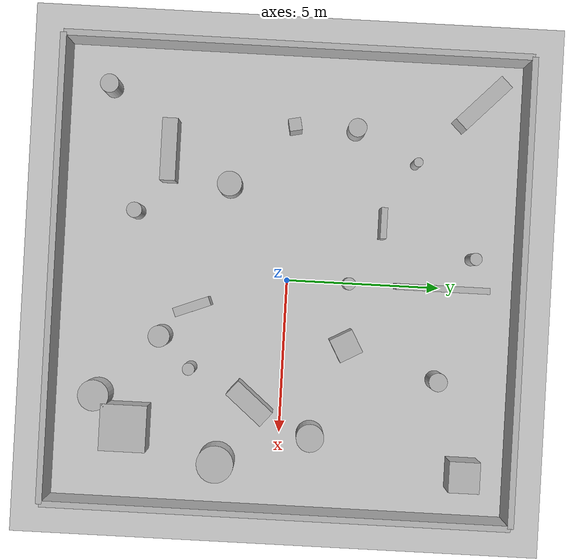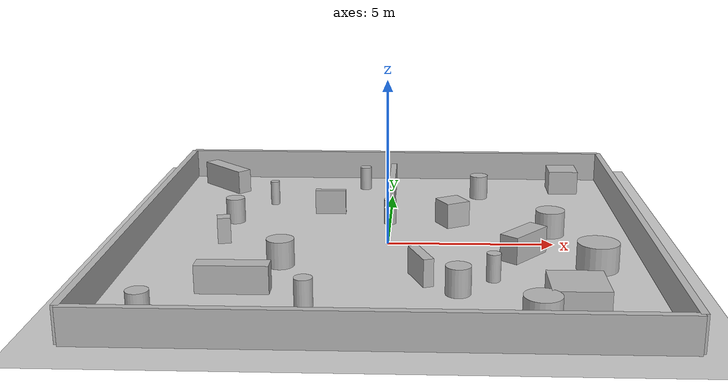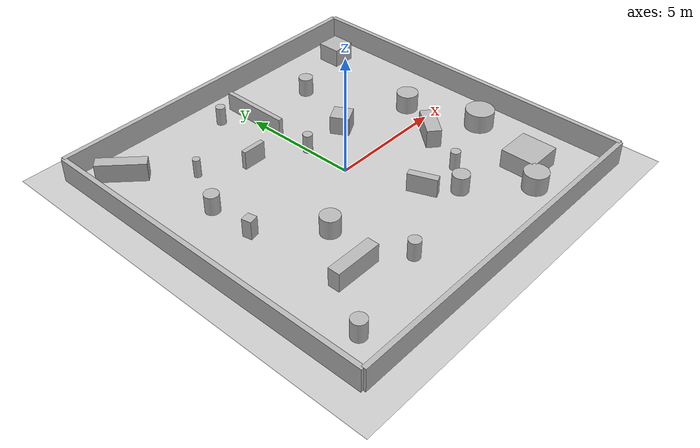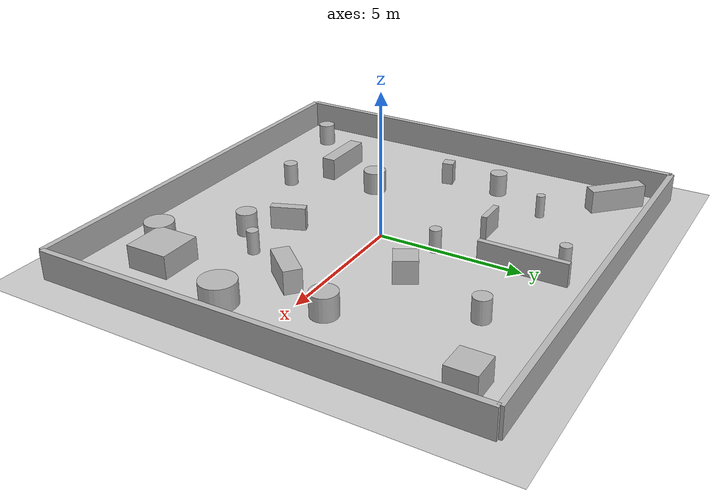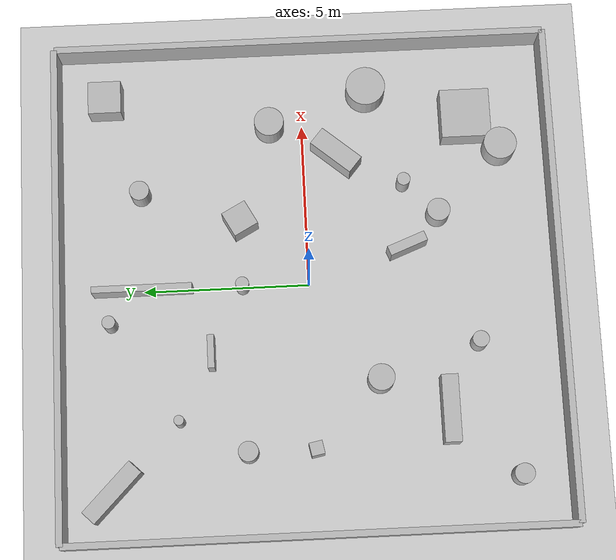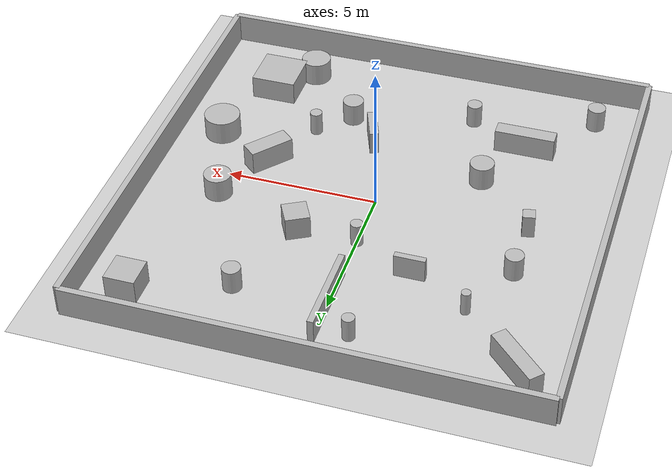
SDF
<?xml version="1.0" ?>
<sdf version="1.6">

<world name="my_world">

<physics name="1ms" type="ignored">
  <max_step_size>0.004</max_step_size>
  <real_time_factor>1.0</real_time_factor>
</physics>
<plugin
  filename="gz-sim-physics-system"
  name="gz::sim::systems::Physics">
</plugin>
<plugin
  filename="gz-sim-user-commands-system"
  name="gz::sim::systems::UserCommands">
</plugin>
<plugin
  filename="gz-sim-scene-broadcaster-system"
  name="gz::sim::systems::SceneBroadcaster">
</plugin>
<plugin
  filename="gz-sim-contact-system"
  name="gz::sim::systems::Contact">
</plugin>

<light type="directional" name="sun">
  <cast_shadows>false</cast_shadows>
  <pose>0 0 15 0 0 0</pose>
  <diffuse>1 1 1 1</diffuse>
  <specular>0.5 0.5 0.5 1</specular>
  <attenuation>
    <range>1000</range>
    <constant>0.9</constant>
    <linear>0.01</linear>
    <quadratic>0.001</quadratic>
  </attenuation>
  <direction>-0.5 0.1 -0.9</direction>
</light>

<model name="ground_plane">
  <static>true</static>
  <pose>0 0 0 0 0 0</pose>
  <link name="link">
    <collision name="collision">
      <geometry>
        <plane>
          <normal>0 0 1</normal>
          <size>100 100</size>
        </plane>
      </geometry>
      <surface>
        <friction>
          <ode>
            <mu>50</mu>
          </ode>
        </friction>
      </surface>
    </collision>
    <visual name="visual">
      <geometry>
        <plane>
          <normal>0 0 1</normal>
          <size>100 100</size>
        </plane>
      </geometry>
      <material>
        <ambient>0.8 0.8 0.8 1</ambient>
        <diffuse>0.8 0.8 0.8 1</diffuse>
        <specular>0.8 0.8 0.8 1</specular>
      </material>
    </visual>
  </link>
</model>

<model name="structure">
    <static>true</static>
    <pose>0 0 0.5 0 0 0</pose>
    <link name="walls">
      <visual name="wall"><pose>0 7.5 0 0 0 0</pose><geometry><box><size>15 0.2 1</size></box></geometry></visual>
      <collision name="wall"><pose>0 7.5 0 0 0 0</pose><geometry><box><size>15 0.2 1</size></box></geometry></collision>
      <visual name="wall_s"><pose>0 -7.5 0 0 0 0</pose><geometry><box><size>15 0.2 1</size></box></geometry></visual>
      <collision name="wall_s"><pose>0 -7.5 0 0 0 0</pose><geometry><box><size>15 0.2 1</size></box></geometry></collision>
      <visual name="wall_e"><pose>7.5 0 0 0 0 1.57</pose><geometry><box><size>15 0.2 1</size></box></geometry></visual>
      <collision name="wall_e"><pose>7.5 0 0 0 0 1.57</pose><geometry><box><size>15 0.2 1</size></box></geometry></collision>
      <visual name="wall_w"><pose>-7.5 0 0 0 0 1.57</pose><geometry><box><size>15 0.2 1</size></box></geometry></visual>
      <collision name="wall_w"><pose>-7.5 0 0 0 0 1.57</pose><geometry><box><size>15 0.2 1</size></box></geometry></collision>
    </link>
  </model>

  <model name="box_1"><static>true</static><pose>2 2 0.4 0 0 0.5</pose><link name="l"><collision name="c"><geometry><box><size>0.8 0.8 0.8</size></box></geometry></collision><visual name="v"><geometry><box><size>0.8 0.8 0.8</size></box></geometry></visual></link></model>
  <model name="box_2"><static>true</static><pose>-2 3 0.4 0 0 0</pose><link name="l"><collision name="c"><geometry><box><size>1 0.2 0.8</size></box></geometry></collision><visual name="v"><geometry><box><size>1 0.2 0.8</size></box></geometry></visual></link></model>
  <model name="box_3"><static>true</static><pose>4 -1 0.4 0 0 -0.7</pose><link name="l"><collision name="c"><geometry><box><size>0.6 1.5 0.8</size></box></geometry></collision><visual name="v"><geometry><box><size>0.6 1.5 0.8</size></box></geometry></visual></link></model>
  <model name="box_4"><static>true</static><pose>-4 -4 0.4 0 0 0</pose><link name="l"><collision name="c"><geometry><box><size>2 0.5 0.8</size></box></geometry></collision><visual name="v"><geometry><box><size>2 0.5 0.8</size></box></geometry></visual></link></model>
  <model name="box_5"><static>true</static><pose>0 5 0.4 0 0 1.57</pose><link name="l"><collision name="c"><geometry><box><size>3 0.2 0.8</size></box></geometry></collision><visual name="v"><geometry><box><size>3 0.2 0.8</size></box></geometry></visual></link></model>
  <model name="box_6"><static>true</static><pose>6 6 0.4 0 0 0</pose><link name="l"><collision name="c"><geometry><box><size>1 1 0.8</size></box></geometry></collision><visual name="v"><geometry><box><size>1 1 0.8</size></box></geometry></visual></link></model>
  <model name="box_7"><static>true</static><pose>-6 6 0.4 0 0 0.8</pose><link name="l"><collision name="c"><geometry><box><size>0.5 2 0.8</size></box></geometry></collision><visual name="v"><geometry><box><size>0.5 2 0.8</size></box></geometry></visual></link></model>
  <model name="box_8"><static>true</static><pose>5 -5 0.4 0 0 0</pose><link name="l"><collision name="c"><geometry><box><size>1.5 1.5 0.8</size></box></geometry></collision><visual name="v"><geometry><box><size>1.5 1.5 0.8</size></box></geometry></visual></link></model>
  <model name="box_9"><static>true</static><pose>-5 0 0.4 0 0 0.2</pose><link name="l"><collision name="c"><geometry><box><size>0.4 0.4 0.8</size></box></geometry></collision><visual name="v"><geometry><box><size>0.4 0.4 0.8</size></box></geometry></visual></link></model>
  <model name="box_10"><static>true</static><pose>1 -3 0.4 0 0 -1.2</pose><link name="l"><collision name="c"><geometry><box><size>1.2 0.3 0.8</size></box></geometry></collision><visual name="v"><geometry><box><size>1.2 0.3 0.8</size></box></geometry></visual></link></model>

  <model name="cyl_1"><static>true</static><pose>3 5 0.4 0 0 0</pose><link name="l"><collision name="c"><geometry><cylinder><radius>0.3</radius><length>0.8</length></cylinder></geometry></collision><visual name="v"><geometry><cylinder><radius>0.3</radius><length>0.8</length></cylinder></geometry></visual></link></model>
  <model name="cyl_2"><static>true</static><pose>-3 -2 0.4 0 0 0</pose><link name="l"><collision name="c"><geometry><cylinder><radius>0.4</radius><length>0.8</length></cylinder></geometry></collision><visual name="v"><geometry><cylinder><radius>0.4</radius><length>0.8</length></cylinder></geometry></visual></link></model>
  <model name="cyl_3"><static>true</static><pose>0 2 0.4 0 0 0</pose><link name="l"><collision name="c"><geometry><cylinder><radius>0.2</radius><length>0.8</length></cylinder></geometry></collision><visual name="v"><geometry><cylinder><radius>0.2</radius><length>0.8</length></cylinder></geometry></visual></link></model>
  <model name="cyl_4"><static>true</static><pose>6 -2 0.4 0 0 0</pose><link name="l"><collision name="c"><geometry><cylinder><radius>0.6</radius><length>0.8</length></cylinder></geometry></collision><visual name="v"><geometry><cylinder><radius>0.6</radius><length>0.8</length></cylinder></geometry></visual></link></model>
  <model name="cyl_5"><static>true</static><pose>-6 -6 0.4 0 0 0</pose><link name="l"><collision name="c"><geometry><cylinder><radius>0.3</radius><length>0.8</length></cylinder></geometry></collision><visual name="v"><geometry><cylinder><radius>0.3</radius><length>0.8</length></cylinder></geometry></visual></link></model>
  <model name="cyl_6"><static>true</static><pose>-1 6 0.4 0 0 0</pose><link name="l"><collision name="c"><geometry><cylinder><radius>0.2</radius><length>0.8</length></cylinder></geometry></collision><visual name="v"><geometry><cylinder><radius>0.2</radius><length>0.8</length></cylinder></geometry></visual></link></model>
  <model name="cyl_7"><static>true</static><pose>4 -6 0.4 0 0 0</pose><link name="l"><collision name="c"><geometry><cylinder><radius>0.5</radius><length>0.8</length></cylinder></geometry></collision><visual name="v"><geometry><cylinder><radius>0.5</radius><length>0.8</length></cylinder></geometry></visual></link></model>
  <model name="cyl_8"><static>true</static><pose>-4 4 0.4 0 0 0</pose><link name="l"><collision name="c"><geometry><cylinder><radius>0.15</radius><length>0.8</length></cylinder></geometry></collision><visual name="v"><geometry><cylinder><radius>0.15</radius><length>0.8</length></cylinder></geometry></visual></link></model>
  <model name="cyl_9"><static>true</static><pose>2 -4 0.4 0 0 0</pose><link name="l"><collision name="c"><geometry><cylinder><radius>0.35</radius><length>0.8</length></cylinder></geometry></collision><visual name="v"><geometry><cylinder><radius>0.35</radius><length>0.8</length></cylinder></geometry></visual></link></model>
  <model name="cyl_10"><static>true</static><pose>-2 -5 0.4 0 0 0</pose><link name="l"><collision name="c"><geometry><cylinder><radius>0.25</radius><length>0.8</length></cylinder></geometry></collision><visual name="v"><geometry><cylinder><radius>0.25</radius><length>0.8</length></cylinder></geometry></visual></link></model>
  <model name="cyl_11"><static>true</static><pose>5 1 0.4 0 0 0</pose><link name="l"><collision name="c"><geometry><cylinder><radius>0.45</radius><length>0.8</length></cylinder></geometry></collision><visual name="v"><geometry><cylinder><radius>0.45</radius><length>0.8</length></cylinder></geometry></visual></link></model>
  <model name="cyl_12"><static>true</static><pose>-5 2 0.4 0 0 0</pose><link name="l"><collision name="c"><geometry><cylinder><radius>0.3</radius><length>0.8</length></cylinder></geometry></collision><visual name="v"><geometry><cylinder><radius>0.3</radius><length>0.8</length></cylinder></geometry></visual></link></model>
  <model name="cyl_13"><static>true</static><pose>3 -3 0.4 0 0 0</pose><link name="l"><collision name="c"><geometry><cylinder><radius>0.2</radius><length>0.8</length></cylinder></geometry></collision><visual name="v"><geometry><cylinder><radius>0.2</radius><length>0.8</length></cylinder></geometry></visual></link></model>

</world>
</sdf>
